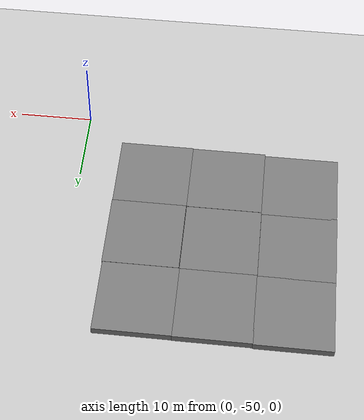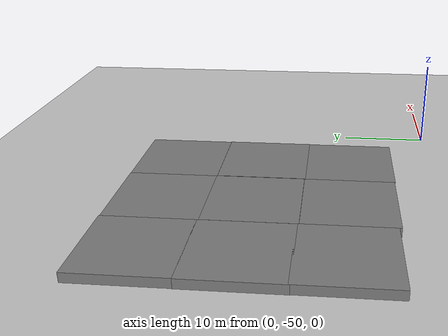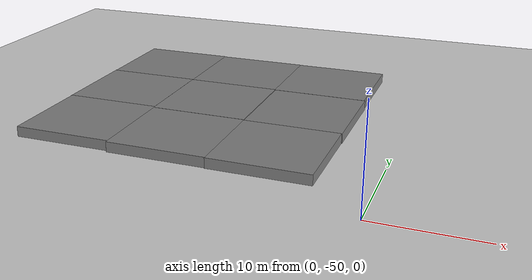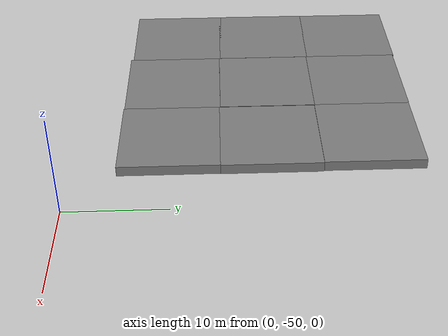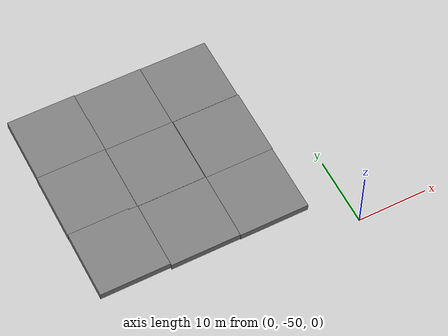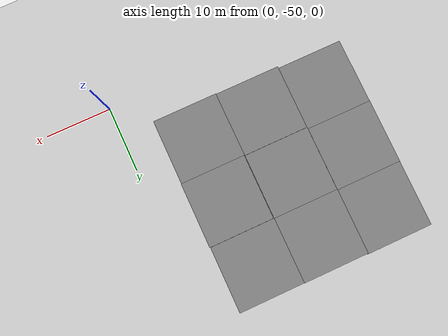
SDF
<sdf version="1.7">
 <world name="default">
  <model name="ground_plane">
   <static>1</static>
   <link name="link">
    <collision name="collision">
     <geometry><plane><normal>0 0 1</normal><size>100 100</size></plane></geometry>
     <surface>
      <contact><collide_bitmask>65535</collide_bitmask></contact>
      <friction><ode><mu>100</mu><mu2>50</mu2></ode></friction>
     </surface>
    </collision>
    <visual name="visual">
     <cast_shadows>0</cast_shadows>
     <geometry><plane><normal>0 0 1</normal><size>100 100</size></plane></geometry>
     <material>
      <script><uri>file://media/materials/scripts/gazebo.material</uri><name>Gazebo/Grey</name></script>
     </material>
    </visual>
   </link>
  </model>
  <model name="farm_clone_0_clone_1">
   <link name="link">
    <inertial>
     <mass>1</mass>
     <inertia><ixx>1</ixx><ixy>0</ixy><ixz>0</ixz><iyy>1</iyy><iyz>0</iyz><izz>1</izz></inertia>
    </inertial>
    <visual name="visual_1">
     <pose>2 2.5 0 0 -0 0</pose>
     <cast_shadows>0</cast_shadows>
     <geometry><box><size>10 10 2</size></box></geometry>
     <material>
      <script>
       <uri>model://mud_box/materials/scripts</uri>
       <uri>model://mud_box/materials/textures</uri>
       <name>vrc/mud</name>
      </script>
      <shader type="pixel"><normal_map>__default__</normal_map></shader>
      <ambient>0.5 0.5 0.5 1</ambient>
      <diffuse>0.5 0.5 0.5 1</diffuse>
      <specular>0.2 0.2 0.2 1</specular>
      <emissive>0 0 0 1</emissive>
     </material>
    </visual>
    <visual name="visual_2">
     <pose>2 2.5 0 0 -0 0</pose>
     <cast_shadows>0</cast_shadows>
     <geometry><box><size>10 10 2</size></box></geometry>
     <material>
      <script>
       <uri>model://mud_box/materials/scripts</uri>
       <uri>model://mud_box/materials/textures</uri>
       <name>vrc/mud</name>
      </script>
      <shader type="pixel"><normal_map>__default__</normal_map></shader>
      <ambient>0.5 0.5 0.5 1</ambient>
      <diffuse>0.5 0.5 0.5 1</diffuse>
      <specular>0.2 0.2 0.2 1</specular>
      <emissive>0 0 0 1</emissive>
     </material>
    </visual>
    <visual name="visual_4">
     <pose>2 2.5 0 0 -0 0</pose>
     <cast_shadows>0</cast_shadows>
     <geometry><box><size>10 10 2</size></box></geometry>
     <material>
      <script>
       <uri>model://mud_box/materials/scripts</uri>
       <uri>model://mud_box/materials/textures</uri>
       <name>vrc/mud</name>
      </script>
      <shader type="pixel"><normal_map>__default__</normal_map></shader>
      <ambient>0.5 0.5 0.5 1</ambient>
      <diffuse>0.5 0.5 0.5 1</diffuse>
      <specular>0.2 0.2 0.2 1</specular>
      <emissive>0 0 0 1</emissive>
     </material>
    </visual>
    <visual name="visual_3">
     <pose>2 2.5 0 0 -0 0</pose>
     <cast_shadows>0</cast_shadows>
     <geometry><box><size>10 10 2</size></box></geometry>
     <material>
      <script>
       <uri>model://mud_box/materials/scripts</uri>
       <uri>model://mud_box/materials/textures</uri>
       <name>vrc/mud</name>
      </script>
      <shader type="pixel"><normal_map>__default__</normal_map></shader>
      <ambient>0.5 0.5 0.5 1</ambient>
      <diffuse>0.5 0.5 0.5 1</diffuse>
      <specular>0.2 0.2 0.2 1</specular>
      <emissive>0 0 0 1</emissive>
     </material>
    </visual>
    <collision name="collision">
     <laser_retro>0.3</laser_retro>
     <pose>2 2.5 0 0 -0 0</pose>
     <geometry><box><size>100 100 2</size></box></geometry>
     <surface>
      <friction>
       <ode><mu>1.2</mu><mu2>1.2</mu2><fdir1>0 0 0</fdir1><slip1>0.01</slip1><slip2>0.01</slip2></ode>
       <torsional>
        <coefficient>0.05</coefficient>
        <patch_radius>0.08</patch_radius>
        <surface_radius>0.05</surface_radius>
        <use_patch_radius>1</use_patch_radius>
        <ode><slip>0</slip></ode>
       </torsional>
      </friction>
      <bounce><restitution_coefficient>0</restitution_coefficient><threshold>1</threshold></bounce>
      <contact>
       <collide_without_contact>0</collide_without_contact>
       <collide_without_contact_bitmask>1</collide_without_contact_bitmask>
       <collide_bitmask>1</collide_bitmask>
       <ode>
        <soft_cfm>0</soft_cfm>
        <soft_erp>1</soft_erp>
        <kp>1e+07</kp>
        <kd>5000</kd>
        <max_vel>0.001</max_vel>
        <min_depth>0.0005</min_depth>
       </ode>
       <bullet>
        <split_impulse>1</split_impulse>
        <split_impulse_penetration_threshold>-0.01</split_impulse_penetration_threshold>
        <soft_cfm>0</soft_cfm>
        <soft_erp>1</soft_erp>
        <kp>1e+07</kp>
        <kd>5000</kd>
       </bullet>
      </contact>
     </surface>
    </collision>
   </link>
   <static>1</static>
   <pose>-12.2184 -22.8542 0 0 -0 0</pose>
  </model>
  <model name="farm_clone_0_clone_1_clone_1">
   <link name="link">
    <inertial>
     <mass>1</mass>
     <inertia><ixx>1</ixx><ixy>0</ixy><ixz>0</ixz><iyy>1</iyy><iyz>0</iyz><izz>1</izz></inertia>
    </inertial>
    <visual name="visual_1">
     <pose>2 2.5 0 0 -0 0</pose>
     <cast_shadows>0</cast_shadows>
     <geometry><box><size>10 10 2</size></box></geometry>
     <material>
      <script>
       <uri>model://mud_box/materials/scripts</uri>
       <uri>model://mud_box/materials/textures</uri>
       <name>vrc/mud</name>
      </script>
      <shader type="pixel"><normal_map>__default__</normal_map></shader>
      <ambient>0.5 0.5 0.5 1</ambient>
      <diffuse>0.5 0.5 0.5 1</diffuse>
      <specular>0.2 0.2 0.2 1</specular>
      <emissive>0 0 0 1</emissive>
     </material>
    </visual>
    <visual name="visual_2">
     <pose>2 2.5 0 0 -0 0</pose>
     <cast_shadows>0</cast_shadows>
     <geometry><box><size>10 10 2</size></box></geometry>
     <material>
      <script>
       <uri>model://mud_box/materials/scripts</uri>
       <uri>model://mud_box/materials/textures</uri>
       <name>vrc/mud</name>
      </script>
      <shader type="pixel"><normal_map>__default__</normal_map></shader>
      <ambient>0.5 0.5 0.5 1</ambient>
      <diffuse>0.5 0.5 0.5 1</diffuse>
      <specular>0.2 0.2 0.2 1</specular>
      <emissive>0 0 0 1</emissive>
     </material>
    </visual>
    <visual name="visual_4">
     <pose>2 2.5 0 0 -0 0</pose>
     <cast_shadows>0</cast_shadows>
     <geometry><box><size>10 10 2</size></box></geometry>
     <material>
      <script>
       <uri>model://mud_box/materials/scripts</uri>
       <uri>model://mud_box/materials/textures</uri>
       <name>vrc/mud</name>
      </script>
      <shader type="pixel"><normal_map>__default__</normal_map></shader>
      <ambient>0.5 0.5 0.5 1</ambient>
      <diffuse>0.5 0.5 0.5 1</diffuse>
      <specular>0.2 0.2 0.2 1</specular>
      <emissive>0 0 0 1</emissive>
     </material>
    </visual>
    <visual name="visual_3">
     <pose>2 2.5 0 0 -0 0</pose>
     <cast_shadows>0</cast_shadows>
     <geometry><box><size>10 10 2</size></box></geometry>
     <material>
      <script>
       <uri>model://mud_box/materials/scripts</uri>
       <uri>model://mud_box/materials/textures</uri>
       <name>vrc/mud</name>
      </script>
      <shader type="pixel"><normal_map>__default__</normal_map></shader>
      <ambient>0.5 0.5 0.5 1</ambient>
      <diffuse>0.5 0.5 0.5 1</diffuse>
      <specular>0.2 0.2 0.2 1</specular>
      <emissive>0 0 0 1</emissive>
     </material>
    </visual>
    <collision name="collision">
     <laser_retro>0.3</laser_retro>
     <pose>2 2.5 0 0 -0 0</pose>
     <geometry><box><size>100 100 2</size></box></geometry>
     <surface>
      <friction>
       <ode><mu>1.2</mu><mu2>1.2</mu2><fdir1>0 0 0</fdir1><slip1>0.01</slip1><slip2>0.01</slip2></ode>
       <torsional>
        <coefficient>0.05</coefficient>
        <patch_radius>0.08</patch_radius>
        <surface_radius>0.05</surface_radius>
        <use_patch_radius>1</use_patch_radius>
        <ode><slip>0</slip></ode>
       </torsional>
      </friction>
      <bounce><restitution_coefficient>0</restitution_coefficient><threshold>1</threshold></bounce>
      <contact>
       <collide_without_contact>0</collide_without_contact>
       <collide_without_contact_bitmask>1</collide_without_contact_bitmask>
       <collide_bitmask>1</collide_bitmask>
       <ode>
        <soft_cfm>0</soft_cfm>
        <soft_erp>1</soft_erp>
        <kp>1e+07</kp>
        <kd>5000</kd>
        <max_vel>0.001</max_vel>
        <min_depth>0.0005</min_depth>
       </ode>
       <bullet>
        <split_impulse>1</split_impulse>
        <split_impulse_penetration_threshold>-0.01</split_impulse_penetration_threshold>
        <soft_cfm>0</soft_cfm>
        <soft_erp>1</soft_erp>
        <kp>1e+07</kp>
        <kd>5000</kd>
       </bullet>
      </contact>
     </surface>
    </collision>
   </link>
   <static>1</static>
   <pose>-22.2078 -22.8102 0 0 -0 0</pose>
  </model>
  <model name="farm_clone_0_clone_1_clone_1_clone_4">
   <link name="link">
    <inertial>
     <mass>1</mass>
     <inertia><ixx>1</ixx><ixy>0</ixy><ixz>0</ixz><iyy>1</iyy><iyz>0</iyz><izz>1</izz></inertia>
    </inertial>
    <visual name="visual_1">
     <pose>2 2.5 0 0 -0 0</pose>
     <cast_shadows>0</cast_shadows>
     <geometry><box><size>10 10 2</size></box></geometry>
     <material>
      <script>
       <uri>model://mud_box/materials/scripts</uri>
       <uri>model://mud_box/materials/textures</uri>
       <name>vrc/mud</name>
      </script>
      <shader type="pixel"><normal_map>__default__</normal_map></shader>
      <ambient>0.5 0.5 0.5 1</ambient>
      <diffuse>0.5 0.5 0.5 1</diffuse>
      <specular>0.2 0.2 0.2 1</specular>
      <emissive>0 0 0 1</emissive>
     </material>
    </visual>
    <visual name="visual_2">
     <pose>2 2.5 0 0 -0 0</pose>
     <cast_shadows>0</cast_shadows>
     <geometry><box><size>10 10 2</size></box></geometry>
     <material>
      <script>
       <uri>model://mud_box/materials/scripts</uri>
       <uri>model://mud_box/materials/textures</uri>
       <name>vrc/mud</name>
      </script>
      <shader type="pixel"><normal_map>__default__</normal_map></shader>
      <ambient>0.5 0.5 0.5 1</ambient>
      <diffuse>0.5 0.5 0.5 1</diffuse>
      <specular>0.2 0.2 0.2 1</specular>
      <emissive>0 0 0 1</emissive>
     </material>
    </visual>
    <visual name="visual_4">
     <pose>2 2.5 0 0 -0 0</pose>
     <cast_shadows>0</cast_shadows>
     <geometry><box><size>10 10 2</size></box></geometry>
     <material>
      <script>
       <uri>model://mud_box/materials/scripts</uri>
       <uri>model://mud_box/materials/textures</uri>
       <name>vrc/mud</name>
      </script>
      <shader type="pixel"><normal_map>__default__</normal_map></shader>
      <ambient>0.5 0.5 0.5 1</ambient>
      <diffuse>0.5 0.5 0.5 1</diffuse>
      <specular>0.2 0.2 0.2 1</specular>
      <emissive>0 0 0 1</emissive>
     </material>
    </visual>
    <visual name="visual_3">
     <pose>2 2.5 0 0 -0 0</pose>
     <cast_shadows>0</cast_shadows>
     <geometry><box><size>10 10 2</size></box></geometry>
     <material>
      <script>
       <uri>model://mud_box/materials/scripts</uri>
       <uri>model://mud_box/materials/textures</uri>
       <name>vrc/mud</name>
      </script>
      <shader type="pixel"><normal_map>__default__</normal_map></shader>
      <ambient>0.5 0.5 0.5 1</ambient>
      <diffuse>0.5 0.5 0.5 1</diffuse>
      <specular>0.2 0.2 0.2 1</specular>
      <emissive>0 0 0 1</emissive>
     </material>
    </visual>
    <collision name="collision">
     <laser_retro>0.3</laser_retro>
     <pose>2 2.5 0 0 -0 0</pose>
     <geometry><box><size>100 100 2</size></box></geometry>
     <surface>
      <friction>
       <ode><mu>1.2</mu><mu2>1.2</mu2><fdir1>0 0 0</fdir1><slip1>0.01</slip1><slip2>0.01</slip2></ode>
       <torsional>
        <coefficient>0.05</coefficient>
        <patch_radius>0.08</patch_radius>
        <surface_radius>0.05</surface_radius>
        <use_patch_radius>1</use_patch_radius>
        <ode><slip>0</slip></ode>
       </torsional>
      </friction>
      <bounce><restitution_coefficient>0</restitution_coefficient><threshold>1</threshold></bounce>
      <contact>
       <collide_without_contact>0</collide_without_contact>
       <collide_without_contact_bitmask>1</collide_without_contact_bitmask>
       <collide_bitmask>1</collide_bitmask>
       <ode>
        <soft_cfm>0</soft_cfm>
        <soft_erp>1</soft_erp>
        <kp>1e+07</kp>
        <kd>5000</kd>
        <max_vel>0.001</max_vel>
        <min_depth>0.0005</min_depth>
       </ode>
       <bullet>
        <split_impulse>1</split_impulse>
        <split_impulse_penetration_threshold>-0.01</split_impulse_penetration_threshold>
        <soft_cfm>0</soft_cfm>
        <soft_erp>1</soft_erp>
        <kp>1e+07</kp>
        <kd>5000</kd>
       </bullet>
      </contact>
     </surface>
    </collision>
   </link>
   <static>1</static>
   <pose>-12.1202 -32.8639 0 0 -0 0</pose>
  </model>
  <model name="farm_clone_0_clone_1_clone_1_clone_5">
   <link name="link">
    <inertial>
     <mass>1</mass>
     <inertia><ixx>1</ixx><ixy>0</ixy><ixz>0</ixz><iyy>1</iyy><iyz>0</iyz><izz>1</izz></inertia>
    </inertial>
    <visual name="visual_1">
     <pose>2 2.5 0 0 -0 0</pose>
     <cast_shadows>0</cast_shadows>
     <geometry><box><size>10 10 2</size></box></geometry>
     <material>
      <script>
       <uri>model://mud_box/materials/scripts</uri>
       <uri>model://mud_box/materials/textures</uri>
       <name>vrc/mud</name>
      </script>
      <shader type="pixel"><normal_map>__default__</normal_map></shader>
      <ambient>0.5 0.5 0.5 1</ambient>
      <diffuse>0.5 0.5 0.5 1</diffuse>
      <specular>0.2 0.2 0.2 1</specular>
      <emissive>0 0 0 1</emissive>
     </material>
    </visual>
    <visual name="visual_2">
     <pose>2 2.5 0 0 -0 0</pose>
     <cast_shadows>0</cast_shadows>
     <geometry><box><size>10 10 2</size></box></geometry>
     <material>
      <script>
       <uri>model://mud_box/materials/scripts</uri>
       <uri>model://mud_box/materials/textures</uri>
       <name>vrc/mud</name>
      </script>
      <shader type="pixel"><normal_map>__default__</normal_map></shader>
      <ambient>0.5 0.5 0.5 1</ambient>
      <diffuse>0.5 0.5 0.5 1</diffuse>
      <specular>0.2 0.2 0.2 1</specular>
      <emissive>0 0 0 1</emissive>
     </material>
    </visual>
    <visual name="visual_4">
     <pose>2 2.5 0 0 -0 0</pose>
     <cast_shadows>0</cast_shadows>
     <geometry><box><size>10 10 2</size></box></geometry>
     <material>
      <script>
       <uri>model://mud_box/materials/scripts</uri>
       <uri>model://mud_box/materials/textures</uri>
       <name>vrc/mud</name>
      </script>
      <shader type="pixel"><normal_map>__default__</normal_map></shader>
      <ambient>0.5 0.5 0.5 1</ambient>
      <diffuse>0.5 0.5 0.5 1</diffuse>
      <specular>0.2 0.2 0.2 1</specular>
      <emissive>0 0 0 1</emissive>
     </material>
    </visual>
    <visual name="visual_3">
     <pose>2 2.5 0 0 -0 0</pose>
     <cast_shadows>0</cast_shadows>
     <geometry><box><size>10 10 2</size></box></geometry>
     <material>
      <script>
       <uri>model://mud_box/materials/scripts</uri>
       <uri>model://mud_box/materials/textures</uri>
       <name>vrc/mud</name>
      </script>
      <shader type="pixel"><normal_map>__default__</normal_map></shader>
      <ambient>0.5 0.5 0.5 1</ambient>
      <diffuse>0.5 0.5 0.5 1</diffuse>
      <specular>0.2 0.2 0.2 1</specular>
      <emissive>0 0 0 1</emissive>
     </material>
    </visual>
    <collision name="collision">
     <laser_retro>0.3</laser_retro>
     <pose>2 2.5 0 0 -0 0</pose>
     <geometry><box><size>100 100 2</size></box></geometry>
     <surface>
      <friction>
       <ode><mu>1.2</mu><mu2>1.2</mu2><fdir1>0 0 0</fdir1><slip1>0.01</slip1><slip2>0.01</slip2></ode>
       <torsional>
        <coefficient>0.05</coefficient>
        <patch_radius>0.08</patch_radius>
        <surface_radius>0.05</surface_radius>
        <use_patch_radius>1</use_patch_radius>
        <ode><slip>0</slip></ode>
       </torsional>
      </friction>
      <bounce><restitution_coefficient>0</restitution_coefficient><threshold>1</threshold></bounce>
      <contact>
       <collide_without_contact>0</collide_without_contact>
       <collide_without_contact_bitmask>1</collide_without_contact_bitmask>
       <collide_bitmask>1</collide_bitmask>
       <ode>
        <soft_cfm>0</soft_cfm>
        <soft_erp>1</soft_erp>
        <kp>1e+07</kp>
        <kd>5000</kd>
        <max_vel>0.001</max_vel>
        <min_depth>0.0005</min_depth>
       </ode>
       <bullet>
        <split_impulse>1</split_impulse>
        <split_impulse_penetration_threshold>-0.01</split_impulse_penetration_threshold>
        <soft_cfm>0</soft_cfm>
        <soft_erp>1</soft_erp>
        <kp>1e+07</kp>
        <kd>5000</kd>
       </bullet>
      </contact>
     </surface>
    </collision>
   </link>
   <static>1</static>
   <pose>-22.1776 -32.7594 0 0 -0 0</pose>
  </model>
  <model name="farm_clone_0_clone_1_clone_1_clone_12">
   <link name="link">
    <inertial>
     <mass>1</mass>
     <inertia><ixx>1</ixx><ixy>0</ixy><ixz>0</ixz><iyy>1</iyy><iyz>0</iyz><izz>1</izz></inertia>
    </inertial>
    <visual name="visual_1">
     <pose>2 2.5 0 0 -0 0</pose>
     <cast_shadows>0</cast_shadows>
     <geometry><box><size>10 10 2</size></box></geometry>
     <material>
      <script>
       <uri>model://mud_box/materials/scripts</uri>
       <uri>model://mud_box/materials/textures</uri>
       <name>vrc/mud</name>
      </script>
      <shader type="pixel"><normal_map>__default__</normal_map></shader>
      <ambient>0.5 0.5 0.5 1</ambient>
      <diffuse>0.5 0.5 0.5 1</diffuse>
      <specular>0.2 0.2 0.2 1</specular>
      <emissive>0 0 0 1</emissive>
     </material>
    </visual>
    <visual name="visual_2">
     <pose>2 2.5 0 0 -0 0</pose>
     <cast_shadows>0</cast_shadows>
     <geometry><box><size>10 10 2</size></box></geometry>
     <material>
      <script>
       <uri>model://mud_box/materials/scripts</uri>
       <uri>model://mud_box/materials/textures</uri>
       <name>vrc/mud</name>
      </script>
      <shader type="pixel"><normal_map>__default__</normal_map></shader>
      <ambient>0.5 0.5 0.5 1</ambient>
      <diffuse>0.5 0.5 0.5 1</diffuse>
      <specular>0.2 0.2 0.2 1</specular>
      <emissive>0 0 0 1</emissive>
     </material>
    </visual>
    <visual name="visual_4">
     <pose>2 2.5 0 0 -0 0</pose>
     <cast_shadows>0</cast_shadows>
     <geometry><box><size>10 10 2</size></box></geometry>
     <material>
      <script>
       <uri>model://mud_box/materials/scripts</uri>
       <uri>model://mud_box/materials/textures</uri>
       <name>vrc/mud</name>
      </script>
      <shader type="pixel"><normal_map>__default__</normal_map></shader>
      <ambient>0.5 0.5 0.5 1</ambient>
      <diffuse>0.5 0.5 0.5 1</diffuse>
      <specular>0.2 0.2 0.2 1</specular>
      <emissive>0 0 0 1</emissive>
     </material>
    </visual>
    <visual name="visual_3">
     <pose>2 2.5 0 0 -0 0</pose>
     <cast_shadows>0</cast_shadows>
     <geometry><box><size>10 10 2</size></box></geometry>
     <material>
      <script>
       <uri>model://mud_box/materials/scripts</uri>
       <uri>model://mud_box/materials/textures</uri>
       <name>vrc/mud</name>
      </script>
      <shader type="pixel"><normal_map>__default__</normal_map></shader>
      <ambient>0.5 0.5 0.5 1</ambient>
      <diffuse>0.5 0.5 0.5 1</diffuse>
      <specular>0.2 0.2 0.2 1</specular>
      <emissive>0 0 0 1</emissive>
     </material>
    </visual>
    <collision name="collision">
     <laser_retro>0.3</laser_retro>
     <pose>2 2.5 0 0 -0 0</pose>
     <geometry><box><size>100 100 2</size></box></geometry>
     <surface>
      <friction>
       <ode><mu>1.2</mu><mu2>1.2</mu2><fdir1>0 0 0</fdir1><slip1>0.01</slip1><slip2>0.01</slip2></ode>
       <torsional>
        <coefficient>0.05</coefficient>
        <patch_radius>0.08</patch_radius>
        <surface_radius>0.05</surface_radius>
        <use_patch_radius>1</use_patch_radius>
        <ode><slip>0</slip></ode>
       </torsional>
      </friction>
      <bounce><restitution_coefficient>0</restitution_coefficient><threshold>1</threshold></bounce>
      <contact>
       <collide_without_contact>0</collide_without_contact>
       <collide_without_contact_bitmask>1</collide_without_contact_bitmask>
       <collide_bitmask>1</collide_bitmask>
       <ode>
        <soft_cfm>0</soft_cfm>
        <soft_erp>1</soft_erp>
        <kp>1e+07</kp>
        <kd>5000</kd>
        <max_vel>0.001</max_vel>
        <min_depth>0.0005</min_depth>
       </ode>
       <bullet>
        <split_impulse>1</split_impulse>
        <split_impulse_penetration_threshold>-0.01</split_impulse_penetration_threshold>
        <soft_cfm>0</soft_cfm>
        <soft_erp>1</soft_erp>
        <kp>1e+07</kp>
        <kd>5000</kd>
       </bullet>
      </contact>
     </surface>
    </collision>
   </link>
   <static>1</static>
   <pose>-12.1758 -42.8554 0 0 -0 0</pose>
  </model>
  <model name="farm_clone_0_clone_1_clone_1_clone_13">
   <link name="link">
    <inertial>
     <mass>1</mass>
     <inertia><ixx>1</ixx><ixy>0</ixy><ixz>0</ixz><iyy>1</iyy><iyz>0</iyz><izz>1</izz></inertia>
    </inertial>
    <visual name="visual_1">
     <pose>2 2.5 0 0 -0 0</pose>
     <cast_shadows>0</cast_shadows>
     <geometry><box><size>10 10 2</size></box></geometry>
     <material>
      <script>
       <uri>model://mud_box/materials/scripts</uri>
       <uri>model://mud_box/materials/textures</uri>
       <name>vrc/mud</name>
      </script>
      <shader type="pixel"><normal_map>__default__</normal_map></shader>
      <ambient>0.5 0.5 0.5 1</ambient>
      <diffuse>0.5 0.5 0.5 1</diffuse>
      <specular>0.2 0.2 0.2 1</specular>
      <emissive>0 0 0 1</emissive>
     </material>
    </visual>
    <visual name="visual_2">
     <pose>2 2.5 0 0 -0 0</pose>
     <cast_shadows>0</cast_shadows>
     <geometry><box><size>10 10 2</size></box></geometry>
     <material>
      <script>
       <uri>model://mud_box/materials/scripts</uri>
       <uri>model://mud_box/materials/textures</uri>
       <name>vrc/mud</name>
      </script>
      <shader type="pixel"><normal_map>__default__</normal_map></shader>
      <ambient>0.5 0.5 0.5 1</ambient>
      <diffuse>0.5 0.5 0.5 1</diffuse>
      <specular>0.2 0.2 0.2 1</specular>
      <emissive>0 0 0 1</emissive>
     </material>
    </visual>
    <visual name="visual_4">
     <pose>2 2.5 0 0 -0 0</pose>
     <cast_shadows>0</cast_shadows>
     <geometry><box><size>10 10 2</size></box></geometry>
     <material>
      <script>
       <uri>model://mud_box/materials/scripts</uri>
       <uri>model://mud_box/materials/textures</uri>
       <name>vrc/mud</name>
      </script>
      <shader type="pixel"><normal_map>__default__</normal_map></shader>
      <ambient>0.5 0.5 0.5 1</ambient>
      <diffuse>0.5 0.5 0.5 1</diffuse>
      <specular>0.2 0.2 0.2 1</specular>
      <emissive>0 0 0 1</emissive>
     </material>
    </visual>
    <visual name="visual_3">
     <pose>2 2.5 0 0 -0 0</pose>
     <cast_shadows>0</cast_shadows>
     <geometry><box><size>10 10 2</size></box></geometry>
     <material>
      <script>
       <uri>model://mud_box/materials/scripts</uri>
       <uri>model://mud_box/materials/textures</uri>
       <name>vrc/mud</name>
      </script>
      <shader type="pixel"><normal_map>__default__</normal_map></shader>
      <ambient>0.5 0.5 0.5 1</ambient>
      <diffuse>0.5 0.5 0.5 1</diffuse>
      <specular>0.2 0.2 0.2 1</specular>
      <emissive>0 0 0 1</emissive>
     </material>
    </visual>
    <collision name="collision">
     <laser_retro>0.3</laser_retro>
     <pose>2 2.5 0 0 -0 0</pose>
     <geometry><box><size>100 100 2</size></box></geometry>
     <surface>
      <friction>
       <ode><mu>1.2</mu><mu2>1.2</mu2><fdir1>0 0 0</fdir1><slip1>0.01</slip1><slip2>0.01</slip2></ode>
       <torsional>
        <coefficient>0.05</coefficient>
        <patch_radius>0.08</patch_radius>
        <surface_radius>0.05</surface_radius>
        <use_patch_radius>1</use_patch_radius>
        <ode><slip>0</slip></ode>
       </torsional>
      </friction>
      <bounce><restitution_coefficient>0</restitution_coefficient><threshold>1</threshold></bounce>
      <contact>
       <collide_without_contact>0</collide_without_contact>
       <collide_without_contact_bitmask>1</collide_without_contact_bitmask>
       <collide_bitmask>1</collide_bitmask>
       <ode>
        <soft_cfm>0</soft_cfm>
        <soft_erp>1</soft_erp>
        <kp>1e+07</kp>
        <kd>5000</kd>
        <max_vel>0.001</max_vel>
        <min_depth>0.0005</min_depth>
       </ode>
       <bullet>
        <split_impulse>1</split_impulse>
        <split_impulse_penetration_threshold>-0.01</split_impulse_penetration_threshold>
        <soft_cfm>0</soft_cfm>
        <soft_erp>1</soft_erp>
        <kp>1e+07</kp>
        <kd>5000</kd>
       </bullet>
      </contact>
     </surface>
    </collision>
   </link>
   <static>1</static>
   <pose>-22.1459 -42.7725 0 0 -0 0</pose>
  </model>
  <model name="farm_clone_0_clone_1_clone_1_clone_29">
   <link name="link">
    <inertial>
     <mass>1</mass>
     <inertia><ixx>1</ixx><ixy>0</ixy><ixz>0</ixz><iyy>1</iyy><iyz>0</iyz><izz>1</izz></inertia>
    </inertial>
    <visual name="visual_1">
     <pose>2 2.5 0 0 -0 0</pose>
     <cast_shadows>0</cast_shadows>
     <geometry><box><size>10 10 2</size></box></geometry>
     <material>
      <script>
       <uri>model://mud_box/materials/scripts</uri>
       <uri>model://mud_box/materials/textures</uri>
       <name>vrc/mud</name>
      </script>
      <shader type="pixel"><normal_map>__default__</normal_map></shader>
      <ambient>0.5 0.5 0.5 1</ambient>
      <diffuse>0.5 0.5 0.5 1</diffuse>
      <specular>0.2 0.2 0.2 1</specular>
      <emissive>0 0 0 1</emissive>
     </material>
    </visual>
    <visual name="visual_2">
     <pose>2 2.5 0 0 -0 0</pose>
     <cast_shadows>0</cast_shadows>
     <geometry><box><size>10 10 2</size></box></geometry>
     <material>
      <script>
       <uri>model://mud_box/materials/scripts</uri>
       <uri>model://mud_box/materials/textures</uri>
       <name>vrc/mud</name>
      </script>
      <shader type="pixel"><normal_map>__default__</normal_map></shader>
      <ambient>0.5 0.5 0.5 1</ambient>
      <diffuse>0.5 0.5 0.5 1</diffuse>
      <specular>0.2 0.2 0.2 1</specular>
      <emissive>0 0 0 1</emissive>
     </material>
    </visual>
    <visual name="visual_4">
     <pose>2 2.5 0 0 -0 0</pose>
     <cast_shadows>0</cast_shadows>
     <geometry><box><size>10 10 2</size></box></geometry>
     <material>
      <script>
       <uri>model://mud_box/materials/scripts</uri>
       <uri>model://mud_box/materials/textures</uri>
       <name>vrc/mud</name>
      </script>
      <shader type="pixel"><normal_map>__default__</normal_map></shader>
      <ambient>0.5 0.5 0.5 1</ambient>
      <diffuse>0.5 0.5 0.5 1</diffuse>
      <specular>0.2 0.2 0.2 1</specular>
      <emissive>0 0 0 1</emissive>
     </material>
    </visual>
    <visual name="visual_3">
     <pose>2 2.5 0 0 -0 0</pose>
     <cast_shadows>0</cast_shadows>
     <geometry><box><size>10 10 2</size></box></geometry>
     <material>
      <script>
       <uri>model://mud_box/materials/scripts</uri>
       <uri>model://mud_box/materials/textures</uri>
       <name>vrc/mud</name>
      </script>
      <shader type="pixel"><normal_map>__default__</normal_map></shader>
      <ambient>0.5 0.5 0.5 1</ambient>
      <diffuse>0.5 0.5 0.5 1</diffuse>
      <specular>0.2 0.2 0.2 1</specular>
      <emissive>0 0 0 1</emissive>
     </material>
    </visual>
    <collision name="collision">
     <laser_retro>0.3</laser_retro>
     <pose>2 2.5 0 0 -0 0</pose>
     <geometry><box><size>100 100 2</size></box></geometry>
     <surface>
      <friction>
       <ode><mu>1.2</mu><mu2>1.2</mu2><fdir1>0 0 0</fdir1><slip1>0.01</slip1><slip2>0.01</slip2></ode>
       <torsional>
        <coefficient>0.05</coefficient>
        <patch_radius>0.08</patch_radius>
        <surface_radius>0.05</surface_radius>
        <use_patch_radius>1</use_patch_radius>
        <ode><slip>0</slip></ode>
       </torsional>
      </friction>
      <bounce><restitution_coefficient>0</restitution_coefficient><threshold>1</threshold></bounce>
      <contact>
       <collide_without_contact>0</collide_without_contact>
       <collide_without_contact_bitmask>1</collide_without_contact_bitmask>
       <collide_bitmask>1</collide_bitmask>
       <ode>
        <soft_cfm>0</soft_cfm>
        <soft_erp>1</soft_erp>
        <kp>1e+07</kp>
        <kd>5000</kd>
        <max_vel>0.001</max_vel>
        <min_depth>0.0005</min_depth>
       </ode>
       <bullet>
        <split_impulse>1</split_impulse>
        <split_impulse_penetration_threshold>-0.01</split_impulse_penetration_threshold>
        <soft_cfm>0</soft_cfm>
        <soft_erp>1</soft_erp>
        <kp>1e+07</kp>
        <kd>5000</kd>
       </bullet>
      </contact>
     </surface>
    </collision>
   </link>
   <static>1</static>
   <pose>-32.1443 -22.7103 0 0 -0 0</pose>
  </model>
  <model name="farm_clone_0_clone_1_clone_1_clone_30">
   <link name="link">
    <inertial>
     <mass>1</mass>
     <inertia><ixx>1</ixx><ixy>0</ixy><ixz>0</ixz><iyy>1</iyy><iyz>0</iyz><izz>1</izz></inertia>
    </inertial>
    <visual name="visual_1">
     <pose>2 2.5 0 0 -0 0</pose>
     <cast_shadows>0</cast_shadows>
     <geometry><box><size>10 10 2</size></box></geometry>
     <material>
      <script>
       <uri>model://mud_box/materials/scripts</uri>
       <uri>model://mud_box/materials/textures</uri>
       <name>vrc/mud</name>
      </script>
      <shader type="pixel"><normal_map>__default__</normal_map></shader>
      <ambient>0.5 0.5 0.5 1</ambient>
      <diffuse>0.5 0.5 0.5 1</diffuse>
      <specular>0.2 0.2 0.2 1</specular>
      <emissive>0 0 0 1</emissive>
     </material>
    </visual>
    <visual name="visual_2">
     <pose>2 2.5 0 0 -0 0</pose>
     <cast_shadows>0</cast_shadows>
     <geometry><box><size>10 10 2</size></box></geometry>
     <material>
      <script>
       <uri>model://mud_box/materials/scripts</uri>
       <uri>model://mud_box/materials/textures</uri>
       <name>vrc/mud</name>
      </script>
      <shader type="pixel"><normal_map>__default__</normal_map></shader>
      <ambient>0.5 0.5 0.5 1</ambient>
      <diffuse>0.5 0.5 0.5 1</diffuse>
      <specular>0.2 0.2 0.2 1</specular>
      <emissive>0 0 0 1</emissive>
     </material>
    </visual>
    <visual name="visual_4">
     <pose>2 2.5 0 0 -0 0</pose>
     <cast_shadows>0</cast_shadows>
     <geometry><box><size>10 10 2</size></box></geometry>
     <material>
      <script>
       <uri>model://mud_box/materials/scripts</uri>
       <uri>model://mud_box/materials/textures</uri>
       <name>vrc/mud</name>
      </script>
      <shader type="pixel"><normal_map>__default__</normal_map></shader>
      <ambient>0.5 0.5 0.5 1</ambient>
      <diffuse>0.5 0.5 0.5 1</diffuse>
      <specular>0.2 0.2 0.2 1</specular>
      <emissive>0 0 0 1</emissive>
     </material>
    </visual>
    <visual name="visual_3">
     <pose>2 2.5 0 0 -0 0</pose>
     <cast_shadows>0</cast_shadows>
     <geometry><box><size>10 10 2</size></box></geometry>
     <material>
      <script>
       <uri>model://mud_box/materials/scripts</uri>
       <uri>model://mud_box/materials/textures</uri>
       <name>vrc/mud</name>
      </script>
      <shader type="pixel"><normal_map>__default__</normal_map></shader>
      <ambient>0.5 0.5 0.5 1</ambient>
      <diffuse>0.5 0.5 0.5 1</diffuse>
      <specular>0.2 0.2 0.2 1</specular>
      <emissive>0 0 0 1</emissive>
     </material>
    </visual>
    <collision name="collision">
     <laser_retro>0.3</laser_retro>
     <pose>2 2.5 0 0 -0 0</pose>
     <geometry><box><size>100 100 2</size></box></geometry>
     <surface>
      <friction>
       <ode><mu>1.2</mu><mu2>1.2</mu2><fdir1>0 0 0</fdir1><slip1>0.01</slip1><slip2>0.01</slip2></ode>
       <torsional>
        <coefficient>0.05</coefficient>
        <patch_radius>0.08</patch_radius>
        <surface_radius>0.05</surface_radius>
        <use_patch_radius>1</use_patch_radius>
        <ode><slip>0</slip></ode>
       </torsional>
      </friction>
      <bounce><restitution_coefficient>0</restitution_coefficient><threshold>1</threshold></bounce>
      <contact>
       <collide_without_contact>0</collide_without_contact>
       <collide_without_contact_bitmask>1</collide_without_contact_bitmask>
       <collide_bitmask>1</collide_bitmask>
       <ode>
        <soft_cfm>0</soft_cfm>
        <soft_erp>1</soft_erp>
        <kp>1e+07</kp>
        <kd>5000</kd>
        <max_vel>0.001</max_vel>
        <min_depth>0.0005</min_depth>
       </ode>
       <bullet>
        <split_impulse>1</split_impulse>
        <split_impulse_penetration_threshold>-0.01</split_impulse_penetration_threshold>
        <soft_cfm>0</soft_cfm>
        <soft_erp>1</soft_erp>
        <kp>1e+07</kp>
        <kd>5000</kd>
       </bullet>
      </contact>
     </surface>
    </collision>
   </link>
   <static>1</static>
   <pose>-32.1836 -32.6579 0 0 -0 0</pose>
  </model>
  <model name="farm_clone_0_clone_1_clone_1_clone_31">
   <link name="link">
    <inertial>
     <mass>1</mass>
     <inertia><ixx>1</ixx><ixy>0</ixy><ixz>0</ixz><iyy>1</iyy><iyz>0</iyz><izz>1</izz></inertia>
    </inertial>
    <visual name="visual_1">
     <pose>2 2.5 0 0 -0 0</pose>
     <cast_shadows>0</cast_shadows>
     <geometry><box><size>10 10 2</size></box></geometry>
     <material>
      <script>
       <uri>model://mud_box/materials/scripts</uri>
       <uri>model://mud_box/materials/textures</uri>
       <name>vrc/mud</name>
      </script>
      <shader type="pixel"><normal_map>__default__</normal_map></shader>
      <ambient>0.5 0.5 0.5 1</ambient>
      <diffuse>0.5 0.5 0.5 1</diffuse>
      <specular>0.2 0.2 0.2 1</specular>
      <emissive>0 0 0 1</emissive>
     </material>
    </visual>
    <visual name="visual_2">
     <pose>2 2.5 0 0 -0 0</pose>
     <cast_shadows>0</cast_shadows>
     <geometry><box><size>10 10 2</size></box></geometry>
     <material>
      <script>
       <uri>model://mud_box/materials/scripts</uri>
       <uri>model://mud_box/materials/textures</uri>
       <name>vrc/mud</name>
      </script>
      <shader type="pixel"><normal_map>__default__</normal_map></shader>
      <ambient>0.5 0.5 0.5 1</ambient>
      <diffuse>0.5 0.5 0.5 1</diffuse>
      <specular>0.2 0.2 0.2 1</specular>
      <emissive>0 0 0 1</emissive>
     </material>
    </visual>
    <visual name="visual_4">
     <pose>2 2.5 0 0 -0 0</pose>
     <cast_shadows>0</cast_shadows>
     <geometry><box><size>10 10 2</size></box></geometry>
     <material>
      <script>
       <uri>model://mud_box/materials/scripts</uri>
       <uri>model://mud_box/materials/textures</uri>
       <name>vrc/mud</name>
      </script>
      <shader type="pixel"><normal_map>__default__</normal_map></shader>
      <ambient>0.5 0.5 0.5 1</ambient>
      <diffuse>0.5 0.5 0.5 1</diffuse>
      <specular>0.2 0.2 0.2 1</specular>
      <emissive>0 0 0 1</emissive>
     </material>
    </visual>
    <visual name="visual_3">
     <pose>2 2.5 0 0 -0 0</pose>
     <cast_shadows>0</cast_shadows>
     <geometry><box><size>10 10 2</size></box></geometry>
     <material>
      <script>
       <uri>model://mud_box/materials/scripts</uri>
       <uri>model://mud_box/materials/textures</uri>
       <name>vrc/mud</name>
      </script>
      <shader type="pixel"><normal_map>__default__</normal_map></shader>
      <ambient>0.5 0.5 0.5 1</ambient>
      <diffuse>0.5 0.5 0.5 1</diffuse>
      <specular>0.2 0.2 0.2 1</specular>
      <emissive>0 0 0 1</emissive>
     </material>
    </visual>
    <collision name="collision">
     <laser_retro>0.3</laser_retro>
     <pose>2 2.5 0 0 -0 0</pose>
     <geometry><box><size>100 100 2</size></box></geometry>
     <surface>
      <friction>
       <ode><mu>1.2</mu><mu2>1.2</mu2><fdir1>0 0 0</fdir1><slip1>0.01</slip1><slip2>0.01</slip2></ode>
       <torsional>
        <coefficient>0.05</coefficient>
        <patch_radius>0.08</patch_radius>
        <surface_radius>0.05</surface_radius>
        <use_patch_radius>1</use_patch_radius>
        <ode><slip>0</slip></ode>
       </torsional>
      </friction>
      <bounce><restitution_coefficient>0</restitution_coefficient><threshold>1</threshold></bounce>
      <contact>
       <collide_without_contact>0</collide_without_contact>
       <collide_without_contact_bitmask>1</collide_without_contact_bitmask>
       <collide_bitmask>1</collide_bitmask>
       <ode>
        <soft_cfm>0</soft_cfm>
        <soft_erp>1</soft_erp>
        <kp>1e+07</kp>
        <kd>5000</kd>
        <max_vel>0.001</max_vel>
        <min_depth>0.0005</min_depth>
       </ode>
       <bullet>
        <split_impulse>1</split_impulse>
        <split_impulse_penetration_threshold>-0.01</split_impulse_penetration_threshold>
        <soft_cfm>0</soft_cfm>
        <soft_erp>1</soft_erp>
        <kp>1e+07</kp>
        <kd>5000</kd>
       </bullet>
      </contact>
     </surface>
    </collision>
   </link>
   <static>1</static>
   <pose>-32.1456 -42.4934 0 0 -0 0</pose>
  </model>
 </world>
</sdf>
